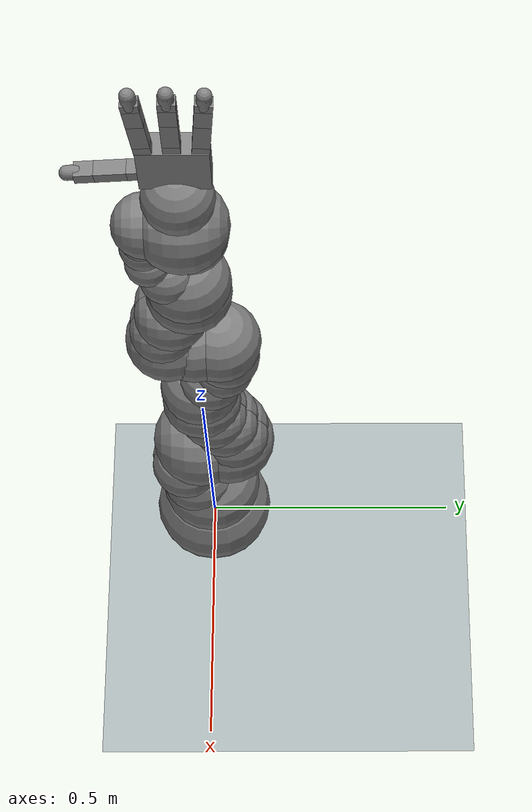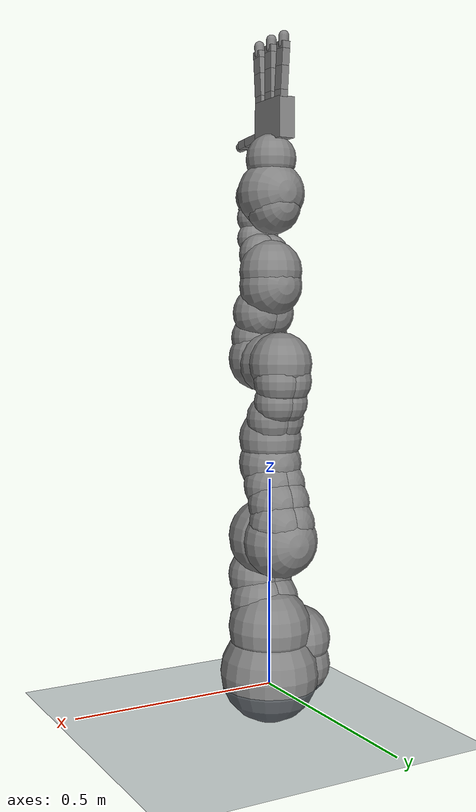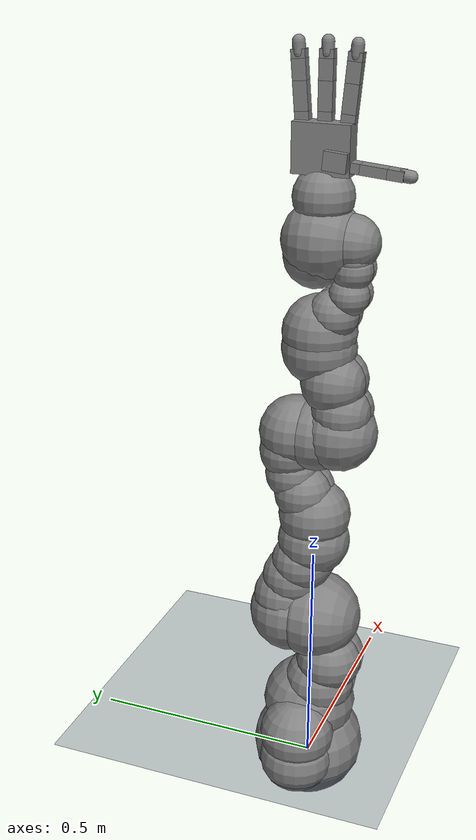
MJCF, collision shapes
<mujoco model="iiwa14 scene">
  <compiler angle="radian" meshdir="assets/"/>

  <option integrator="implicitfast"/>

  <size nkey="1"/>

  <visual>
    <global azimuth="120" elevation="-20"/>
    <headlight diffuse="0.6 0.6 0.6" specular="0 0 0"/>
  </visual>

  <statistic meansize="0.08" extent="0.8" center="0.3 0 0.4"/>

  <default>
    <default class="iiwa">
      <material shininess="0.25"/>
      <site size="0.001 0.005 0.005" group="4" rgba="1 0 0 1"/>
      <general biastype="affine" gainprm="2000" biasprm="0 -2000 -200"/>
      <default class="joint1">
        <joint range="-2.96706 2.96706"/>
        <general ctrlrange="-2.96706 2.96706"/>
        <default class="joint2">
          <joint range="-2.0944 2.0944"/>
          <general ctrlrange="-2.0944 2.0944"/>
        </default>
      </default>
      <default class="joint3">
        <joint range="-3.05433 3.05433"/>
        <general ctrlrange="-3.05433 3.05433"/>
      </default>
      <default class="visual">
        <geom type="mesh" contype="0" conaffinity="0" group="2" material="gray"/>
      </default>
      <default class="collision">
        <geom group="3"/>
      </default>
    </default>
    <default class="allegro_left/main">
      <default class="allegro_left/allegro_left">
        <joint damping="0.1"/>
        <geom density="800"/>
        <general biastype="affine" biasprm="0 -1"/>
        <default class="allegro_left/visual">
          <geom type="mesh" contype="0" conaffinity="0" group="2" material="black"/>
          <default class="allegro_left/palm_visual">
            <geom mesh="base_link"/>
          </default>
          <default class="allegro_left/base_visual">
            <geom mesh="link_0.0"/>
          </default>
          <default class="allegro_left/proximal_visual">
            <geom mesh="link_1.0"/>
          </default>
          <default class="allegro_left/medial_visual">
            <geom mesh="link_2.0"/>
          </default>
          <default class="allegro_left/distal_visual">
            <geom mesh="link_3.0"/>
          </default>
          <default class="allegro_left/fingertip_visual">
            <geom material="white" mesh="link_3.0_tip"/>
          </default>
          <default class="allegro_left/thumbtip_visual">
            <geom material="white" mesh="link_15.0_tip"/>
          </default>
        </default>
        <default class="allegro_left/collision">
          <geom type="box" group="3"/>
          <default class="allegro_left/palm_collision">
            <geom size="0.0204 0.0565 0.0475"/>
          </default>
          <default class="allegro_left/base_collision">
            <geom size="0.0098 0.01375 0.0082"/>
            <default class="allegro_left/thumb_base_collision">
              <geom size="0.0179 0.017 0.02275"/>
            </default>
          </default>
          <default class="allegro_left/proximal_collision">
            <geom size="0.0098 0.01375 0.027"/>
            <default class="allegro_left/thumb_proximal_collision">
              <geom size="0.0098 0.01375 0.00885"/>
            </default>
          </default>
          <default class="allegro_left/medial_collision">
            <geom size="0.0098 0.01375 0.0192"/>
            <default class="allegro_left/thumb_medial_collision">
              <geom size="0.0098 0.01375 0.0257"/>
            </default>
          </default>
          <default class="allegro_left/distal_collision">
            <geom size="0.0098 0.01375 0.008"/>
            <default class="allegro_left/thumb_distal_collision">
              <geom size="0.0098 0.01375 0.0157"/>
            </default>
          </default>
          <default class="allegro_left/fingertip_collision">
            <geom size="0.012 0.01 0" type="capsule"/>
            <default class="allegro_left/thumbtip_collision">
              <geom size="0.012 0.008 0"/>
            </default>
          </default>
        </default>
        <default class="allegro_left/base">
          <joint range="-0.47 0.47"/>
          <general ctrlrange="-0.47 0.47"/>
        </default>
        <default class="allegro_left/proximal">
          <joint range="-0.196 1.61"/>
          <general ctrlrange="-0.196 1.61"/>
        </default>
        <default class="allegro_left/medial">
          <joint range="-0.174 1.709"/>
          <general ctrlrange="-0.174 1.709"/>
        </default>
        <default class="allegro_left/distal">
          <joint range="-0.227 1.618"/>
          <general ctrlrange="-0.227 1.618"/>
        </default>
        <default class="allegro_left/thumb_base">
          <joint range="0.263 1.396"/>
          <general ctrlrange="0.263 1.396"/>
        </default>
        <default class="allegro_left/thumb_proximal">
          <joint range="-0.105 1.163"/>
          <general ctrlrange="-0.105 1.163"/>
        </default>
        <default class="allegro_left/thumb_medial">
          <joint range="-0.189 1.644"/>
          <general ctrlrange="-0.189 1.644"/>
        </default>
        <default class="allegro_left/thumb_distal">
          <joint range="-0.162 1.719"/>
          <general ctrlrange="-0.162 1.719"/>
        </default>
      </default>
    </default>
  </default>

  <asset>
    <texture type="2d" name="grid" builtin="checker" mark="cross" rgb1="0.2 0.3 0.4" rgb2="0.1 0.15 0.2" markrgb="0.8 0.8 0.8" width="512" height="512"/>
    <material name="gray" class="iiwa" rgba="0.4 0.4 0.4 1"/>
    <material name="light_gray" class="iiwa" rgba="0.6 0.6 0.6 1"/>
    <material name="black" class="iiwa" rgba="0 0 0 1"/>
    <material name="orange" class="iiwa" rgba="1 0.423529 0.0392157 1"/>
    <material name="grid" texture="grid" texuniform="true"/>
    <material name="allegro_left/black" rgba="0.2 0.2 0.2 1"/>
    <material name="allegro_left/white" rgba="0.9 0.9 0.9 1"/>
    <mesh name="link_0" file="link_0.obj"/>
    <mesh name="link_1" file="link_1.obj"/>
    <mesh name="link_2_orange" file="link_2_orange.obj"/>
    <mesh name="link_2_grey" file="link_2_grey.obj"/>
    <mesh name="link_3" file="link_3.obj"/>
    <mesh name="band" file="band.obj"/>
    <mesh name="kuka" file="kuka.obj"/>
    <mesh name="link_4_orange" file="link_4_orange.obj"/>
    <mesh name="link_4_grey" file="link_4_grey.obj"/>
    <mesh name="link_5" file="link_5.obj"/>
    <mesh name="link_6_orange" file="link_6_orange.obj"/>
    <mesh name="link_6_grey" file="link_6_grey.obj"/>
    <mesh name="link_7" file="link_7.obj"/>
    <mesh name="allegro_left/base_link_left" file="base_link_left.stl"/>
    <mesh name="allegro_left/link_0.0" file="link_0.0.stl"/>
    <mesh name="allegro_left/link_1.0" file="link_1.0.stl"/>
    <mesh name="allegro_left/link_2.0" file="link_2.0.stl"/>
    <mesh name="allegro_left/link_3.0" file="link_3.0.stl"/>
    <mesh name="allegro_left/link_3.0_tip" file="link_3.0_tip.stl"/>
    <mesh name="allegro_left/link_12.0_left" file="link_12.0_left.stl"/>
    <mesh name="allegro_left/link_13.0" file="link_13.0.stl"/>
    <mesh name="allegro_left/link_14.0" file="link_14.0.stl"/>
    <mesh name="allegro_left/link_15.0" file="link_15.0.stl"/>
    <mesh name="allegro_left/link_15.0_tip" file="link_15.0_tip.stl"/>
  </asset>

  <worldbody>
    <geom name="floor" size="1 1 0.01" type="plane" material="grid"/>
    <light name="top" pos="0 0 2" dir="0 0 -1" mode="trackcom"/>
    <light pos="0 0 1.5" dir="0 0 -1" directional="true"/>
    <body name="base" childclass="iiwa">
      <inertial pos="-0.1 0 0.07" mass="5" diaginertia="0.05 0.06 0.03"/>
      <geom class="visual" mesh="link_0"/>
      <geom class="collision" size="0.12" pos="0 0 0.03"/>
      <geom class="collision" size="0.08" pos="-0.08 0 0.103"/>
      <geom class="collision" size="0.08" pos="-0.08 0 0.04"/>
      <geom class="collision" size="0.1" pos="0 0 0.14"/>
      <body name="link1" pos="0 0 0.1575">
        <inertial pos="0 -0.03 0.12" mass="5.76" diaginertia="0.0333 0.033 0.0123"/>
        <joint name="joint1" class="joint1" pos="0 0 0" axis="0 0 1"/>
        <geom class="visual" mesh="link_1"/>
        <geom class="collision" size="0.08" pos="0 0 -0.0005"/>
        <geom class="collision" size="0.075" pos="0.01 -0.025 0.0425"/>
        <geom class="collision" size="0.075" pos="-0.01 -0.025 0.0425"/>
        <geom class="collision" size="0.07" pos="0.01 -0.045 0.1025"/>
        <geom class="collision" size="0.07" pos="-0.01 -0.045 0.1025"/>
        <body name="link2" pos="0 0 0.2025" quat="0 0 0.707107 0.707107">
          <inertial pos="0.0003 0.059 0.042" quat="0 0 0.707107 0.707107" mass="6.35" diaginertia="0.0305 0.0304 0.011"/>
          <joint name="joint2" class="joint2" pos="0 0 0" axis="0 0 1"/>
          <geom class="visual" material="orange" mesh="link_2_orange"/>
          <geom class="visual" mesh="link_2_grey"/>
          <geom class="collision" size="0.095" pos="0 0 -0.01"/>
          <geom class="collision" size="0.09" pos="0 0 0.045"/>
          <geom class="collision" size="0.07" pos="-0.01 0.04 0.054"/>
          <geom class="collision" size="0.065" pos="-0.01 0.09 0.04"/>
          <geom class="collision" size="0.065" pos="-0.01 0.13 0.02"/>
          <geom class="collision" size="0.07" pos="0.01 0.04 0.054"/>
          <geom class="collision" size="0.065" pos="0.01 0.09 0.04"/>
          <geom class="collision" size="0.065" pos="0.01 0.13 0.02"/>
          <geom class="collision" size="0.075" pos="0 0.18 0"/>
          <body name="link3" pos="0 0.2045 0" quat="0 0 0.707107 0.707107">
            <inertial pos="0 0.03 0.13" mass="3.5" diaginertia="0.025 0.0238 0.0076"/>
            <joint name="joint3" class="joint1" pos="0 0 0" axis="0 0 1"/>
            <geom class="visual" mesh="link_3"/>
            <geom class="visual" material="light_gray" mesh="band"/>
            <geom class="visual" material="black" mesh="kuka"/>
            <geom class="collision" size="0.075" pos="0 0 0.0355"/>
            <geom class="collision" size="0.06" pos="0.01 0.023 0.0855"/>
            <geom class="collision" size="0.055" pos="0.01 0.048 0.1255"/>
            <geom class="collision" size="0.06" pos="0.01 0.056 0.1755"/>
            <geom class="collision" size="0.06" pos="-0.01 0.023 0.0855"/>
            <geom class="collision" size="0.055" pos="-0.01 0.048 0.1255"/>
            <geom class="collision" size="0.06" pos="-0.01 0.056 0.1755"/>
            <geom class="collision" size="0.075" pos="0 0.045 0.2155"/>
            <geom class="collision" size="0.075" pos="0 0 0.2155"/>
            <body name="link4" pos="0 0 0.2155" quat="0.707107 0.707107 0 0">
              <inertial pos="0 0.067 0.034" quat="0.707107 0.707107 0 0" mass="3.5" diaginertia="0.017 0.0164 0.006"/>
              <joint name="joint4" class="joint2" pos="0 0 0" axis="0 0 1"/>
              <geom class="visual" material="orange" mesh="link_4_orange"/>
              <geom class="visual" mesh="link_4_grey"/>
              <geom class="collision" size="0.078" pos="0 0.01 0.046"/>
              <geom class="collision" size="0.06" pos="0.01 0.06 0.052"/>
              <geom class="collision" size="0.065" pos="0.01 0.12 0.034"/>
              <geom class="collision" size="0.06" pos="-0.01 0.06 0.052"/>
              <geom class="collision" size="0.065" pos="-0.01 0.12 0.034"/>
              <geom class="collision" size="0.075" pos="0 0.184 0"/>
              <body name="link5" pos="0 0.1845 0" quat="0 0 0.707107 0.707107">
                <inertial pos="0.0001 0.021 0.076" mass="3.5" diaginertia="0.01 0.0087 0.00449"/>
                <joint name="joint5" class="joint1" pos="0 0 0" axis="0 0 1"/>
                <geom class="visual" mesh="link_5"/>
                <geom class="visual" material="light_gray" mesh="band"/>
                <geom class="visual" material="black" mesh="kuka"/>
                <geom class="collision" size="0.075" pos="0 0 0.0335"/>
                <geom class="collision" size="0.05" pos="-0.012 0.031 0.0755"/>
                <geom class="collision" size="0.05" pos="0.012 0.031 0.0755"/>
                <geom class="collision" size="0.04" pos="-0.012 0.06 0.1155"/>
                <geom class="collision" size="0.04" pos="0.012 0.06 0.1155"/>
                <geom class="collision" size="0.04" pos="-0.01 0.065 0.1655"/>
                <geom class="collision" size="0.04" pos="0.01 0.065 0.1655"/>
                <geom class="collision" size="0.035" pos="-0.012 0.065 0.1855"/>
                <geom class="collision" size="0.035" pos="0.012 0.065 0.1855"/>
                <body name="link6" pos="0 0 0.2155" quat="0.707107 0.707107 0 0">
                  <inertial pos="0 0.0006 0.0004" quat="0.707107 0.707107 0 0" mass="1.8" diaginertia="0.0049 0.0047 0.0036"/>
                  <joint name="joint6" class="joint2" pos="0 0 0" axis="0 0 1"/>
                  <geom class="visual" material="orange" mesh="link_6_orange"/>
                  <geom class="visual" mesh="link_6_grey"/>
                  <geom class="collision" size="0.055" pos="0 0 -0.059"/>
                  <geom class="collision" size="0.065" pos="0 -0.03 0.011"/>
                  <geom class="collision" size="0.08"/>
                  <body name="link7" pos="0 0.081 0" quat="0 0 0.707107 0.707107">
                    <inertial pos="0 0 0.02" mass="1.2" diaginertia="0.001 0.001 0.001"/>
                    <joint name="joint7" class="joint3" pos="0 0 0" axis="0 0 1"/>
                    <geom class="visual" mesh="link_7"/>
                    <geom class="collision" size="0.06" pos="0 0 0.001"/>
                    <site name="attachment_site" pos="0 0 0.045"/>
                    <body name="allegro_left/palm" childclass="allegro_left/allegro_left" pos="0 0 0.14">
                      <geom class="allegro_left/palm_visual" quat="0.707107 -0.707107 0 0" material="allegro_left/black" mesh="allegro_left/base_link_left"/>
                      <geom class="allegro_left/palm_collision" pos="-0.0093 0 -0.0475" mass="0"/>
                      <body name="allegro_left/rf_base" pos="0 0.0435 -0.001542" quat="0.999048 -0.0436194 0 0">
                        <joint name="allegro_left/rfj0" class="allegro_left/base" pos="0 0 0" axis="0 0 1"/>
                        <geom class="allegro_left/base_visual" material="allegro_left/black" mesh="allegro_left/link_0.0"/>
                        <geom class="allegro_left/base_collision" pos="0 0 0.0082" mass="0"/>
                        <body name="allegro_left/rf_proximal" pos="0 0 0.0164">
                          <joint name="allegro_left/rfj1" class="allegro_left/proximal" pos="0 0 0" axis="0 1 0"/>
                          <geom class="allegro_left/proximal_visual" material="allegro_left/black" mesh="allegro_left/link_1.0"/>
                          <geom class="allegro_left/proximal_collision" pos="0 0 0.027" mass="0"/>
                          <body name="allegro_left/rf_medial" pos="0 0 0.054">
                            <joint name="allegro_left/rfj2" class="allegro_left/medial" pos="0 0 0" axis="0 1 0"/>
                            <geom class="allegro_left/medial_visual" material="allegro_left/black" mesh="allegro_left/link_2.0"/>
                            <geom class="allegro_left/medial_collision" pos="0 0 0.0192" mass="0"/>
                            <body name="allegro_left/rf_distal" pos="0 0 0.0384">
                              <joint name="allegro_left/rfj3" class="allegro_left/distal" pos="0 0 0" axis="0 1 0"/>
                              <geom class="allegro_left/distal_visual" material="allegro_left/black" mesh="allegro_left/link_3.0"/>
                              <geom class="allegro_left/distal_collision" pos="0 0 0.008" mass="0"/>
                              <body name="allegro_left/rf_tip">
                                <geom class="allegro_left/fingertip_visual" pos="0 0 0.0267" material="allegro_left/white" mesh="allegro_left/link_3.0_tip"/>
                                <geom class="allegro_left/fingertip_collision" pos="0 0 0.019" mass="0"/>
                                <site name="allegro_left/rf_tip" pos="0 0 0.03" size="0.001" group="4" rgba="1 0 0 1"/>
                              </body>
                            </body>
                          </body>
                        </body>
                      </body>
                      <body name="allegro_left/mf_base" pos="0 0 0.0007">
                        <joint name="allegro_left/mfj0" class="allegro_left/base" pos="0 0 0" axis="0 0 1"/>
                        <geom class="allegro_left/base_visual" material="allegro_left/black" mesh="allegro_left/link_0.0"/>
                        <geom class="allegro_left/base_collision" pos="0 0 0.0082" mass="0"/>
                        <body name="allegro_left/mf_proximal" pos="0 0 0.0164">
                          <joint name="allegro_left/mfj1" class="allegro_left/proximal" pos="0 0 0" axis="0 1 0"/>
                          <geom class="allegro_left/proximal_visual" material="allegro_left/black" mesh="allegro_left/link_1.0"/>
                          <geom class="allegro_left/proximal_collision" pos="0 0 0.027" mass="0"/>
                          <body name="allegro_left/mf_medial" pos="0 0 0.054">
                            <joint name="allegro_left/mfj2" class="allegro_left/medial" pos="0 0 0" axis="0 1 0"/>
                            <geom class="allegro_left/medial_visual" material="allegro_left/black" mesh="allegro_left/link_2.0"/>
                            <geom class="allegro_left/medial_collision" pos="0 0 0.0192" mass="0"/>
                            <body name="allegro_left/mf_distal" pos="0 0 0.0384">
                              <joint name="allegro_left/mfj3" class="allegro_left/distal" pos="0 0 0" axis="0 1 0"/>
                              <geom class="allegro_left/distal_visual" material="allegro_left/black" mesh="allegro_left/link_3.0"/>
                              <geom class="allegro_left/distal_collision" pos="0 0 0.008" mass="0"/>
                              <body name="allegro_left/mf_tip">
                                <geom class="allegro_left/fingertip_visual" pos="0 0 0.0267" material="allegro_left/white" mesh="allegro_left/link_3.0_tip"/>
                                <geom class="allegro_left/fingertip_collision" pos="0 0 0.019" mass="0"/>
                                <site name="allegro_left/mf_tip" pos="0 0 0.03" size="0.001" group="4" rgba="1 0 0 1"/>
                              </body>
                            </body>
                          </body>
                        </body>
                      </body>
                      <body name="allegro_left/ff_base" pos="0 -0.0435 -0.001542" quat="0.999048 0.0436194 0 0">
                        <joint name="allegro_left/ffj0" class="allegro_left/base" pos="0 0 0" axis="0 0 1"/>
                        <geom class="allegro_left/base_visual" material="allegro_left/black" mesh="allegro_left/link_0.0"/>
                        <geom class="allegro_left/base_collision" pos="0 0 0.0082" mass="0"/>
                        <body name="allegro_left/ff_proximal" pos="0 0 0.0164">
                          <joint name="allegro_left/ffj1" class="allegro_left/proximal" pos="0 0 0" axis="0 1 0"/>
                          <geom class="allegro_left/proximal_visual" material="allegro_left/black" mesh="allegro_left/link_1.0"/>
                          <geom class="allegro_left/proximal_collision" pos="0 0 0.027" mass="0"/>
                          <body name="allegro_left/ff_medial" pos="0 0 0.054">
                            <joint name="allegro_left/ffj2" class="allegro_left/medial" pos="0 0 0" axis="0 1 0"/>
                            <geom class="allegro_left/medial_visual" material="allegro_left/black" mesh="allegro_left/link_2.0"/>
                            <geom class="allegro_left/medial_collision" pos="0 0 0.0192" mass="0"/>
                            <body name="allegro_left/ff_distal" pos="0 0 0.0384">
                              <joint name="allegro_left/ffj3" class="allegro_left/distal" pos="0 0 0" axis="0 1 0"/>
                              <geom class="allegro_left/distal_visual" material="allegro_left/black" mesh="allegro_left/link_3.0"/>
                              <geom class="allegro_left/distal_collision" pos="0 0 0.008" mass="0"/>
                              <body name="allegro_left/ff_tip">
                                <geom class="allegro_left/fingertip_visual" pos="0 0 0.0267" material="allegro_left/white" mesh="allegro_left/link_3.0_tip"/>
                                <geom class="allegro_left/fingertip_collision" pos="0 0 0.019" mass="0"/>
                                <site name="allegro_left/ff_tip" pos="0 0 0.03" size="0.001" group="4" rgba="1 0 0 1"/>
                              </body>
                            </body>
                          </body>
                        </body>
                      </body>
                      <body name="allegro_left/th_base" pos="-0.0182 -0.019333 -0.045987" quat="0.477714 0.521334 -0.521334 0.477714">
                        <joint name="allegro_left/thj0" class="allegro_left/thumb_base" pos="0 0 0" axis="1 0 0"/>
                        <geom class="allegro_left/visual" quat="0 1 0 0" material="allegro_left/black" mesh="allegro_left/link_12.0_left"/>
                        <geom class="allegro_left/thumb_base_collision" pos="-0.0179 0.009 0.0145" mass="0"/>
                        <body name="allegro_left/th_proximal" pos="-0.027 -0.005 0.0399">
                          <joint name="allegro_left/thj1" class="allegro_left/thumb_proximal" pos="0 0 0" axis="0 0 -1"/>
                          <geom class="allegro_left/visual" material="allegro_left/black" mesh="allegro_left/link_13.0"/>
                          <geom class="allegro_left/thumb_proximal_collision" pos="0 0 0.00885" mass="0"/>
                          <body name="allegro_left/th_medial" pos="0 0 0.0177">
                            <joint name="allegro_left/thj2" class="allegro_left/thumb_medial" pos="0 0 0" axis="0 1 0"/>
                            <geom class="allegro_left/visual" material="allegro_left/black" mesh="allegro_left/link_14.0"/>
                            <geom class="allegro_left/thumb_medial_collision" pos="0 0 0.0257" mass="0"/>
                            <body name="allegro_left/th_distal" pos="0 0 0.0514">
                              <joint name="allegro_left/thj3" class="allegro_left/thumb_distal" pos="0 0 0" axis="0 1 0"/>
                              <geom class="allegro_left/visual" material="allegro_left/black" mesh="allegro_left/link_15.0"/>
                              <geom class="allegro_left/thumb_distal_collision" pos="0 0 0.0157" mass="0"/>
                              <body name="allegro_left/th_tip">
                                <geom class="allegro_left/thumbtip_visual" pos="0 0 0.0423" material="allegro_left/white" mesh="allegro_left/link_15.0_tip"/>
                                <geom class="allegro_left/thumbtip_collision" pos="0 0 0.035" mass="0"/>
                                <site name="allegro_left/th_tip" pos="0 0 0.045" size="0.001" group="4" rgba="1 0 0 1"/>
                              </body>
                            </body>
                          </body>
                        </body>
                      </body>
                    </body>
                  </body>
                </body>
              </body>
            </body>
          </body>
        </body>
      </body>
    </body>
  </worldbody>

  <contact>
    <exclude body1="base" body2="link1"/>
    <exclude body1="base" body2="link2"/>
    <exclude body1="base" body2="link3"/>
    <exclude body1="link1" body2="link3"/>
    <exclude body1="link3" body2="link5"/>
    <exclude body1="link4" body2="link7"/>
    <exclude body1="link5" body2="link7"/>
    <exclude body1="allegro_left/palm" body2="allegro_left/rf_base"/>
    <exclude body1="allegro_left/palm" body2="allegro_left/mf_base"/>
    <exclude body1="allegro_left/palm" body2="allegro_left/ff_base"/>
    <exclude body1="allegro_left/palm" body2="allegro_left/th_base"/>
    <exclude body1="allegro_left/palm" body2="allegro_left/th_proximal"/>
  </contact>

  <actuator>
    <general name="actuator1" class="joint1" joint="joint1"/>
    <general name="actuator2" class="joint2" joint="joint2"/>
    <general name="actuator3" class="joint1" joint="joint3"/>
    <general name="actuator4" class="joint2" joint="joint4"/>
    <general name="actuator5" class="joint1" joint="joint5"/>
    <general name="actuator6" class="joint2" joint="joint6"/>
    <general name="actuator7" class="joint3" joint="joint7"/>
    <general name="allegro_left/ffa0" class="allegro_left/base" joint="allegro_left/ffj0"/>
    <general name="allegro_left/ffa1" class="allegro_left/proximal" joint="allegro_left/ffj1"/>
    <general name="allegro_left/ffa2" class="allegro_left/medial" joint="allegro_left/ffj2"/>
    <general name="allegro_left/ffa3" class="allegro_left/distal" joint="allegro_left/ffj3"/>
    <general name="allegro_left/mfa0" class="allegro_left/base" joint="allegro_left/mfj0"/>
    <general name="allegro_left/mfa1" class="allegro_left/proximal" joint="allegro_left/mfj1"/>
    <general name="allegro_left/mfa2" class="allegro_left/medial" joint="allegro_left/mfj2"/>
    <general name="allegro_left/mfa3" class="allegro_left/distal" joint="allegro_left/mfj3"/>
    <general name="allegro_left/rfa0" class="allegro_left/base" joint="allegro_left/rfj0"/>
    <general name="allegro_left/rfa1" class="allegro_left/proximal" joint="allegro_left/rfj1"/>
    <general name="allegro_left/rfa2" class="allegro_left/medial" joint="allegro_left/rfj2"/>
    <general name="allegro_left/rfa3" class="allegro_left/distal" joint="allegro_left/rfj3"/>
    <general name="allegro_left/tha0" class="allegro_left/thumb_base" joint="allegro_left/thj0"/>
    <general name="allegro_left/tha1" class="allegro_left/thumb_proximal" joint="allegro_left/thj1"/>
    <general name="allegro_left/tha2" class="allegro_left/thumb_medial" joint="allegro_left/thj2"/>
    <general name="allegro_left/tha3" class="allegro_left/thumb_distal" joint="allegro_left/thj3"/>
  </actuator>

  <keyframe>
    <key name="home" qpos="-0.0759329 0.153982 0.104381 -1.8971 0.245996 0.34972 -0.239115 -0.0694123 0.0551428 0.986832 0.671424 -0.186261 -0.0866821 1.01374 0.728192 -0.218949 -0.0318307 1.25156 0.840648 1.0593 0.638801 0.391599 0.57284"/>
  </keyframe>
</mujoco>
